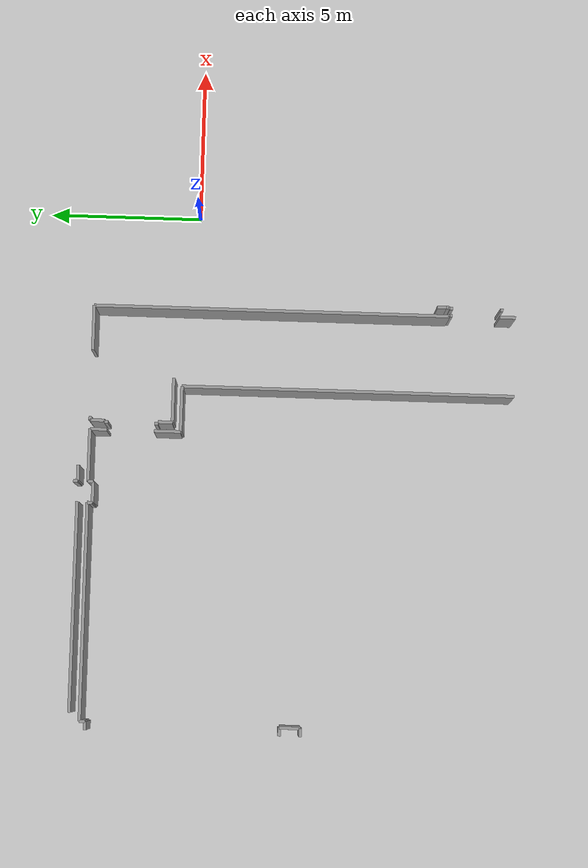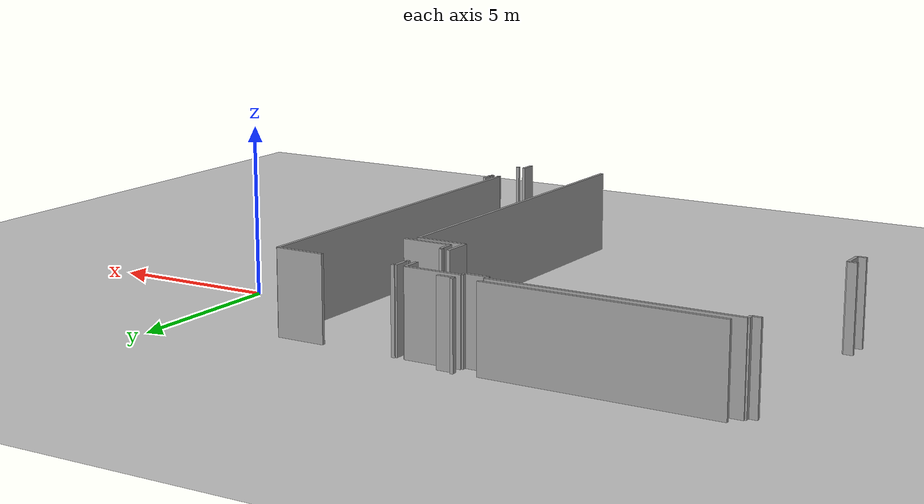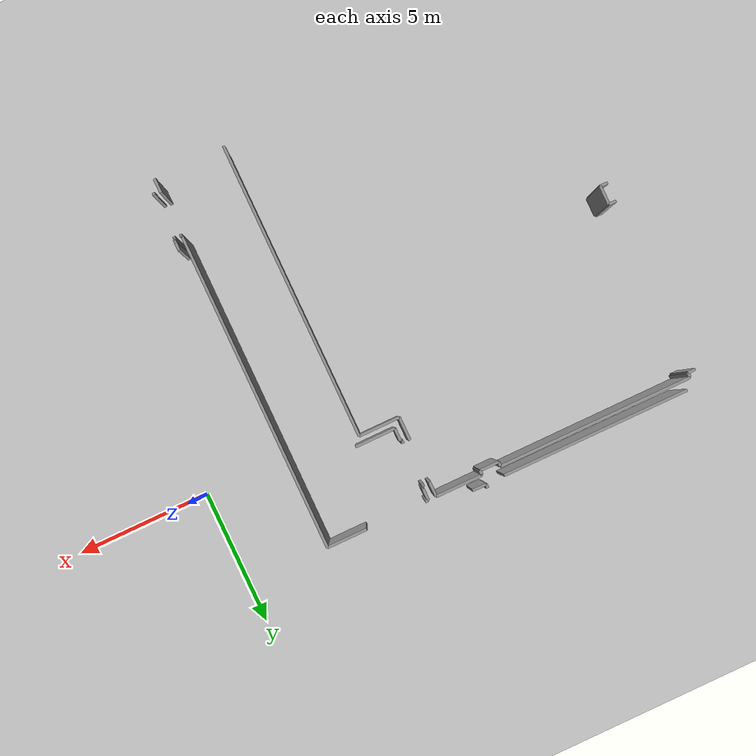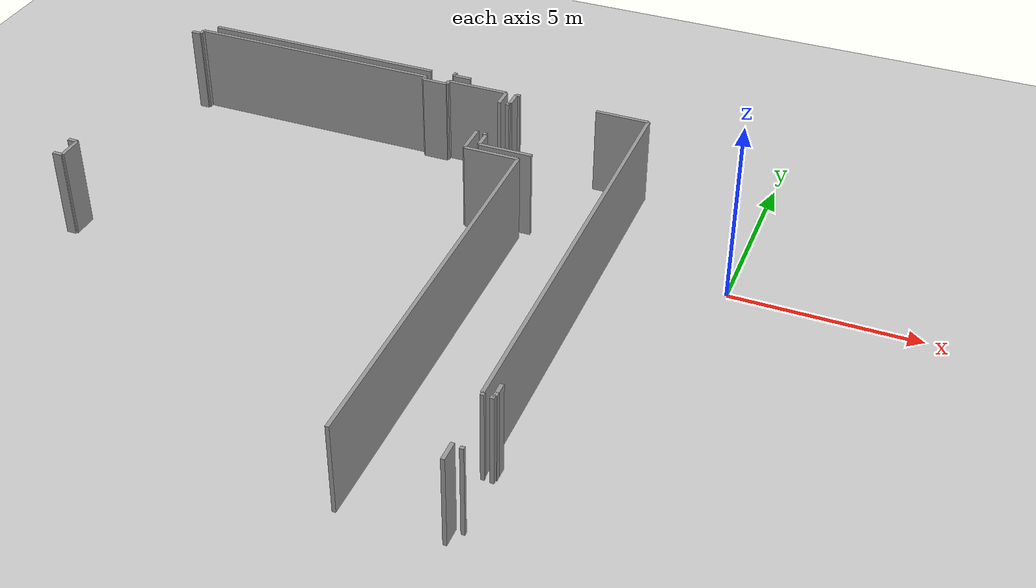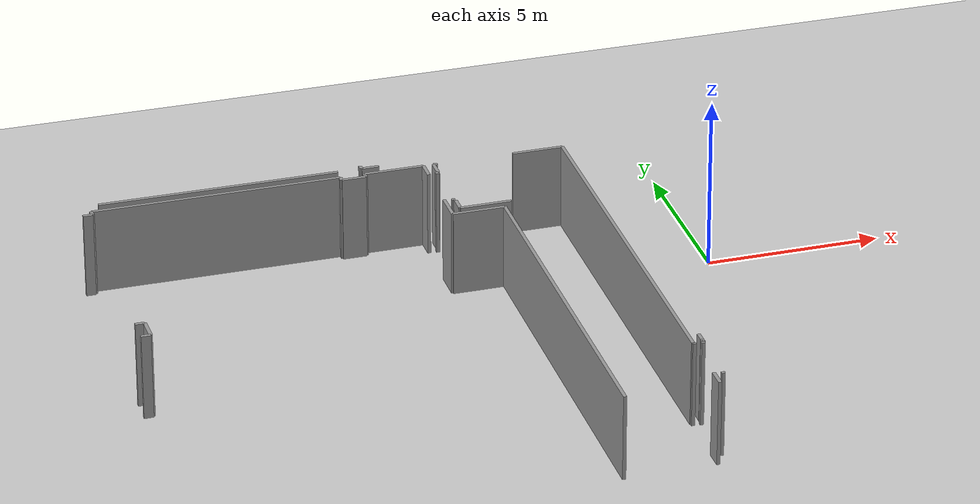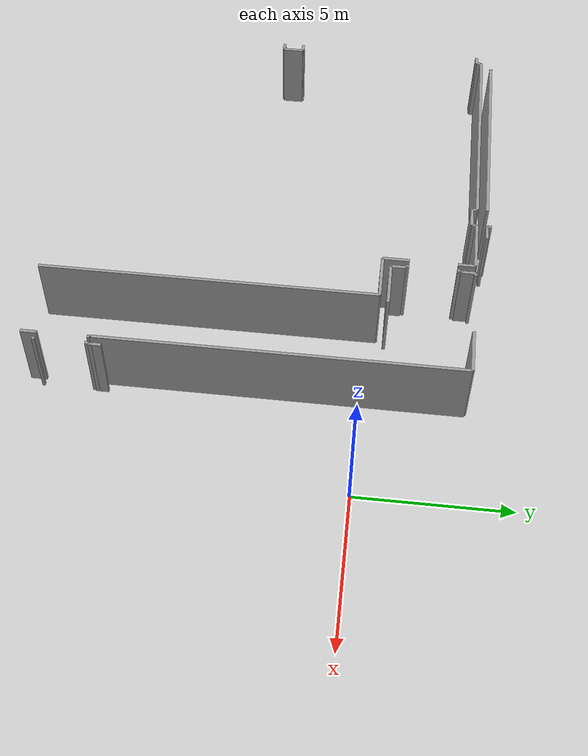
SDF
<sdf version="1.6">
 <world name="default">
  <model name="ground_plane">
   <static>1</static>
   <link name="link">
    <collision name="collision">
     <geometry><plane><normal>0 0 1</normal><size>100 100</size></plane></geometry>
     <surface><friction><ode><mu>100</mu><mu2>50</mu2></ode></friction></surface>
    </collision>
    <visual name="visual">
     <cast_shadows>0</cast_shadows>
     <geometry><plane><normal>0 0 1</normal><size>100 100</size></plane></geometry>
     <material>
      <script><uri>file://media/materials/scripts/gazebo.material</uri><name>Gazebo/Grey</name></script>
     </material>
    </visual>
   </link>
  </model>
  <model name="50055648">
   <static>1</static>
   <link name="Wall_11">
    <collision name="Wall_11_Collision">
     <geometry><box><size>6.85002592081 0.1 2.5</size></box></geometry>
     <pose>3.4250129604 0 1.25 0 0 0</pose>
    </collision>
    <visual name="Wall_11_Visual">
     <pose>3.4250129604 0 1.25 0 0 0</pose>
     <geometry><box><size>6.85002592081 0.1 2.5</size></box></geometry>
     <material>
      <script><uri>file://media/materials/scripts/gazebo.material</uri><name>Gazebo/Grey</name></script>
      <ambient>1 1 1 1</ambient>
     </material>
    </visual>
    <pose>7.40717216499 -20.3761385145 0 0 0 3.13977528299</pose>
   </link>
   <link name="Wall_18">
    <collision name="Wall_18_Collision">
     <geometry><box><size>0.508631750105 0.1 2.5</size></box></geometry>
     <pose>0.254315875052 0 1.25 0 0 0</pose>
    </collision>
    <visual name="Wall_18_Visual">
     <pose>0.254315875052 0 1.25 0 0 0</pose>
     <geometry><box><size>0.508631750105 0.1 2.5</size></box></geometry>
     <material>
      <script><uri>file://media/materials/scripts/gazebo.material</uri><name>Gazebo/Grey</name></script>
      <ambient>1 1 1 1</ambient>
     </material>
    </visual>
    <pose>8.59973831633 -20.3677544747 0 0 0 3.14159265359</pose>
   </link>
   <link name="Wall_19">
    <collision name="Wall_19_Collision">
     <geometry><box><size>0.144434140826 0.1 2.5</size></box></geometry>
     <pose>0.0722170704132 0 1.25 0 0 0</pose>
    </collision>
    <visual name="Wall_19_Visual">
     <pose>0.0722170704132 0 1.25 0 0 0</pose>
     <geometry><box><size>0.144434140826 0.1 2.5</size></box></geometry>
     <material>
      <script><uri>file://media/materials/scripts/gazebo.material</uri><name>Gazebo/Grey</name></script>
      <ambient>1 1 1 1</ambient>
     </material>
    </visual>
    <pose>8.09110656623 -20.3677544747 0 0 0 1.57079632679</pose>
   </link>
   <link name="Wall_41">
    <collision name="Wall_41_Collision">
     <geometry><box><size>0.270829892913 0.1 2.5</size></box></geometry>
     <pose>0.135414946456 0 1.25 0 0 0</pose>
    </collision>
    <visual name="Wall_41_Visual">
     <pose>0.135414946456 0 1.25 0 0 0</pose>
     <geometry><box><size>0.270829892913 0.1 2.5</size></box></geometry>
     <material>
      <script><uri>file://media/materials/scripts/gazebo.material</uri><name>Gazebo/Grey</name></script>
      <ambient>1 1 1 1</ambient>
     </material>
    </visual>
    <pose>0.00482717445155 -27.8817596321 0 0 0 0.0</pose>
   </link>
   <link name="Wall_42">
    <collision name="Wall_42_Collision">
     <geometry><box><size>0.681393783107 0.1 2.5</size></box></geometry>
     <pose>0.340696891554 0 1.25 0 0 0</pose>
    </collision>
    <visual name="Wall_42_Visual">
     <pose>0.340696891554 0 1.25 0 0 0</pose>
     <geometry><box><size>0.681393783107 0.1 2.5</size></box></geometry>
     <material>
      <script><uri>file://media/materials/scripts/gazebo.material</uri><name>Gazebo/Grey</name></script>
      <ambient>1 1 1 1</ambient>
     </material>
    </visual>
    <pose>0.275657067364 -27.8817596321 0 0 0 1.57079632679</pose>
   </link>
   <link name="Wall_43">
    <collision name="Wall_43_Collision">
     <geometry><box><size>0.270067707473 0.1 2.5</size></box></geometry>
     <pose>0.135033853737 0 1.25 0 0 0</pose>
    </collision>
    <visual name="Wall_43_Visual">
     <pose>0.135033853737 0 1.25 0 0 0</pose>
     <geometry><box><size>0.270067707473 0.1 2.5</size></box></geometry>
     <material>
      <script><uri>file://media/materials/scripts/gazebo.material</uri><name>Gazebo/Grey</name></script>
      <ambient>1 1 1 1</ambient>
     </material>
    </visual>
    <pose>0.275657067364 -27.200365849 0 0 0 3.14159265359</pose>
   </link>
   <link name="Wall_44">
    <collision name="Wall_44_Collision">
     <geometry><box><size>0.275403005551 0.1 2.5</size></box></geometry>
     <pose>0.137701502776 0 1.25 0 0 0</pose>
    </collision>
    <visual name="Wall_44_Visual">
     <pose>0.137701502776 0 1.25 0 0 0</pose>
     <geometry><box><size>0.275403005551 0.1 2.5</size></box></geometry>
     <material>
      <script><uri>file://media/materials/scripts/gazebo.material</uri><name>Gazebo/Grey</name></script>
      <ambient>1 1 1 1</ambient>
     </material>
    </visual>
    <pose>0.00558935989126 -20.8862946355 0 0 0 0.0</pose>
   </link>
   <link name="Wall_45">
    <collision name="Wall_45_Collision">
     <geometry><box><size>0.177589207454 0.1 2.5</size></box></geometry>
     <pose>0.0887946037271 0 1.25 0 0 0</pose>
    </collision>
    <visual name="Wall_45_Visual">
     <pose>0.0887946037271 0 1.25 0 0 0</pose>
     <geometry><box><size>0.177589207454 0.1 2.5</size></box></geometry>
     <material>
      <script><uri>file://media/materials/scripts/gazebo.material</uri><name>Gazebo/Grey</name></script>
      <ambient>1 1 1 1</ambient>
     </material>
    </visual>
    <pose>0.280992365443 -20.8862946355 0 0 0 1.57079632679</pose>
   </link>
   <link name="Wall_46">
    <collision name="Wall_46_Collision">
     <geometry><box><size>7.10674407083 0.1 2.5</size></box></geometry>
     <pose>3.55337203542 0 1.25 0 0 0</pose>
    </collision>
    <visual name="Wall_46_Visual">
     <pose>3.55337203542 0 1.25 0 0 0</pose>
     <geometry><box><size>7.10674407083 0.1 2.5</size></box></geometry>
     <material>
      <script><uri>file://media/materials/scripts/gazebo.material</uri><name>Gazebo/Grey</name></script>
      <ambient>1 1 1 1</ambient>
     </material>
    </visual>
    <pose>0.280992365443 -20.708705428 0 0 0 0.0</pose>
   </link>
   <link name="Wall_47">
    <collision name="Wall_47_Collision">
     <geometry><box><size>0.164632054979 0.1 2.5</size></box></geometry>
     <pose>0.0823160274895 0 1.25 0 0 0</pose>
    </collision>
    <visual name="Wall_47_Visual">
     <pose>0.0823160274895 0 1.25 0 0 0</pose>
     <geometry><box><size>0.164632054979 0.1 2.5</size></box></geometry>
     <material>
      <script><uri>file://media/materials/scripts/gazebo.material</uri><name>Gazebo/Grey</name></script>
      <ambient>1 1 1 1</ambient>
     </material>
    </visual>
    <pose>7.38773643627 -20.708705428 0 0 0 -1.57079632679</pose>
   </link>
   <link name="Wall_48">
    <collision name="Wall_48_Collision">
     <geometry><box><size>0.693969842863 0.1 2.5</size></box></geometry>
     <pose>0.346984921431 0 1.25 0 0 0</pose>
    </collision>
    <visual name="Wall_48_Visual">
     <pose>0.346984921431 0 1.25 0 0 0</pose>
     <geometry><box><size>0.693969842863 0.1 2.5</size></box></geometry>
     <material>
      <script><uri>file://media/materials/scripts/gazebo.material</uri><name>Gazebo/Grey</name></script>
      <ambient>1 1 1 1</ambient>
     </material>
    </visual>
    <pose>7.38773643627 -20.873337483 0 0 0 0.0</pose>
   </link>
   <link name="Wall_49">
    <collision name="Wall_49_Collision">
     <geometry><box><size>0.166537518578 0.1 2.5</size></box></geometry>
     <pose>0.0832687592891 0 1.25 0 0 0</pose>
    </collision>
    <visual name="Wall_49_Visual">
     <pose>0.0832687592891 0 1.25 0 0 0</pose>
     <geometry><box><size>0.166537518578 0.1 2.5</size></box></geometry>
     <material>
      <script><uri>file://media/materials/scripts/gazebo.material</uri><name>Gazebo/Grey</name></script>
      <ambient>1 1 1 1</ambient>
     </material>
    </visual>
    <pose>8.08170627914 -20.873337483 0 0 0 1.57079632679</pose>
   </link>
   <link name="Wall_50">
    <collision name="Wall_50_Collision">
     <geometry><box><size>1.71580645571 0.1 2.5</size></box></geometry>
     <pose>0.857903227855 0 1.25 0 0 0</pose>
    </collision>
    <visual name="Wall_50_Visual">
     <pose>0.857903227855 0 1.25 0 0 0</pose>
     <geometry><box><size>1.71580645571 0.1 2.5</size></box></geometry>
     <material>
      <script><uri>file://media/materials/scripts/gazebo.material</uri><name>Gazebo/Grey</name></script>
      <ambient>1 1 1 1</ambient>
     </material>
    </visual>
    <pose>8.08170627914 -20.7067999644 0 0 0 0.0</pose>
   </link>
   <link name="Wall_51">
    <collision name="Wall_51_Collision">
     <geometry><box><size>0.556395370994 0.1 2.5</size></box></geometry>
     <pose>0.278197685497 0 1.25 0 0 0</pose>
    </collision>
    <visual name="Wall_51_Visual">
     <pose>0.278197685497 0 1.25 0 0 0</pose>
     <geometry><box><size>0.556395370994 0.1 2.5</size></box></geometry>
     <material>
      <script><uri>file://media/materials/scripts/gazebo.material</uri><name>Gazebo/Grey</name></script>
      <ambient>1 1 1 1</ambient>
     </material>
    </visual>
    <pose>9.79751273485 -20.7067999644 0 0 0 -1.57079632679</pose>
   </link>
   <link name="Wall_52">
    <collision name="Wall_52_Collision">
     <geometry><box><size>0.860380330534 0.1 2.5</size></box></geometry>
     <pose>0.430190165267 0 1.25 0 0 0</pose>
    </collision>
    <visual name="Wall_52_Visual">
     <pose>0.430190165267 0 1.25 0 0 0</pose>
     <geometry><box><size>0.860380330534 0.1 2.5</size></box></geometry>
     <material>
      <script><uri>file://media/materials/scripts/gazebo.material</uri><name>Gazebo/Grey</name></script>
      <ambient>1 1 1 1</ambient>
     </material>
    </visual>
    <pose>9.79751273485 -22.8106858399 0 0 0 -1.57079632679</pose>
   </link>
   <link name="Wall_53">
    <collision name="Wall_53_Collision">
     <geometry><box><size>1.49642407998 0.1 2.5</size></box></geometry>
     <pose>0.748212039989 0 1.25 0 0 0</pose>
    </collision>
    <visual name="Wall_53_Visual">
     <pose>0.748212039989 0 1.25 0 0 0</pose>
     <geometry><box><size>1.49642407998 0.1 2.5</size></box></geometry>
     <material>
      <script><uri>file://media/materials/scripts/gazebo.material</uri><name>Gazebo/Grey</name></script>
      <ambient>1 1 1 1</ambient>
     </material>
    </visual>
    <pose>9.79751273485 -23.6710661704 0 0 0 0.0</pose>
   </link>
   <link name="Wall_54">
    <collision name="Wall_54_Collision">
     <geometry><box><size>10.8827377701 0.1 2.5</size></box></geometry>
     <pose>5.44136888505 0 1.25 0 0 0</pose>
    </collision>
    <visual name="Wall_54_Visual">
     <pose>5.44136888505 0 1.25 0 0 0</pose>
     <geometry><box><size>10.8827377701 0.1 2.5</size></box></geometry>
     <material>
      <script><uri>file://media/materials/scripts/gazebo.material</uri><name>Gazebo/Grey</name></script>
      <ambient>1 1 1 1</ambient>
     </material>
    </visual>
    <pose>11.2939368148 -23.6710661704 0 0 0 -1.57079632679</pose>
   </link>
   <link name="Wall_62">
    <collision name="Wall_62_Collision">
     <geometry><box><size>1.46593666239 0.1 2.5</size></box></geometry>
     <pose>0.732968331195 0 1.25 0 0 0</pose>
    </collision>
    <visual name="Wall_62_Visual">
     <pose>0.732968331195 0 1.25 0 0 0</pose>
     <geometry><box><size>1.46593666239 0.1 2.5</size></box></geometry>
     <material>
      <script><uri>file://media/materials/scripts/gazebo.material</uri><name>Gazebo/Grey</name></script>
      <ambient>1 1 1 1</ambient>
     </material>
    </visual>
    <pose>11.5608287496 -23.3922333304 0 0 0 3.14159265359</pose>
   </link>
   <link name="Wall_63">
    <collision name="Wall_63_Collision">
     <geometry><box><size>0.469506230866 0.1 2.5</size></box></geometry>
     <pose>0.234753115433 0 1.25 0 0 0</pose>
    </collision>
    <visual name="Wall_63_Visual">
     <pose>0.234753115433 0 1.25 0 0 0</pose>
     <geometry><box><size>0.469506230866 0.1 2.5</size></box></geometry>
     <material>
      <script><uri>file://media/materials/scripts/gazebo.material</uri><name>Gazebo/Grey</name></script>
      <ambient>1 1 1 1</ambient>
     </material>
    </visual>
    <pose>10.0948920872 -23.3922333304 0 0 0 1.57079632679</pose>
   </link>
   <link name="Wall_64">
    <collision name="Wall_64_Collision">
     <geometry><box><size>0.0470014354492 0.1 2.5</size></box></geometry>
     <pose>0.0235007177246 0 1.25 0 0 0</pose>
    </collision>
    <visual name="Wall_64_Visual">
     <pose>0.0235007177246 0 1.25 0 0 0</pose>
     <geometry><box><size>0.0470014354492 0.1 2.5</size></box></geometry>
     <material>
      <script><uri>file://media/materials/scripts/gazebo.material</uri><name>Gazebo/Grey</name></script>
      <ambient>1 1 1 1</ambient>
     </material>
    </visual>
    <pose>10.0948920872 -22.9227270995 0 0 0 3.14159265359</pose>
   </link>
   <link name="Wall_65">
    <collision name="Wall_65_Collision">
     <geometry><box><size>0.108357363347 0.1 2.5</size></box></geometry>
     <pose>0.0541786816733 0 1.25 0 0 0</pose>
    </collision>
    <visual name="Wall_65_Visual">
     <pose>0.0541786816733 0 1.25 0 0 0</pose>
     <geometry><box><size>0.108357363347 0.1 2.5</size></box></geometry>
     <material>
      <script><uri>file://media/materials/scripts/gazebo.material</uri><name>Gazebo/Grey</name></script>
      <ambient>1 1 1 1</ambient>
     </material>
    </visual>
    <pose>10.0478906518 -22.9227270995 0 0 0 1.57079632679</pose>
   </link>
   <link name="Wall_66">
    <collision name="Wall_66_Collision">
     <geometry><box><size>0.109119548786 0.1 2.5</size></box></geometry>
     <pose>0.0545597743931 0 1.25 0 0 0</pose>
    </collision>
    <visual name="Wall_66_Visual">
     <pose>0.0545597743931 0 1.25 0 0 0</pose>
     <geometry><box><size>0.109119548786 0.1 2.5</size></box></geometry>
     <material>
      <script><uri>file://media/materials/scripts/gazebo.material</uri><name>Gazebo/Grey</name></script>
      <ambient>1 1 1 1</ambient>
     </material>
    </visual>
    <pose>10.0478906518 -21.2875852695 0 0 0 1.57079632679</pose>
   </link>
   <link name="Wall_67">
    <collision name="Wall_67_Collision">
     <geometry><box><size>0.0435716009705 0.1 2.5</size></box></geometry>
     <pose>0.0217858004853 0 1.25 0 0 0</pose>
    </collision>
    <visual name="Wall_67_Visual">
     <pose>0.0217858004853 0 1.25 0 0 0</pose>
     <geometry><box><size>0.0435716009705 0.1 2.5</size></box></geometry>
     <material>
      <script><uri>file://media/materials/scripts/gazebo.material</uri><name>Gazebo/Grey</name></script>
      <ambient>1 1 1 1</ambient>
     </material>
    </visual>
    <pose>10.0478906518 -21.1784657207 0 0 0 0.0</pose>
   </link>
   <link name="Wall_68">
    <collision name="Wall_68_Collision">
     <geometry><box><size>0.475095590757 0.1 2.5</size></box></geometry>
     <pose>0.237547795379 0 1.25 0 0 0</pose>
    </collision>
    <visual name="Wall_68_Visual">
     <pose>0.237547795379 0 1.25 0 0 0</pose>
     <geometry><box><size>0.475095590757 0.1 2.5</size></box></geometry>
     <material>
      <script><uri>file://media/materials/scripts/gazebo.material</uri><name>Gazebo/Grey</name></script>
      <ambient>1 1 1 1</ambient>
     </material>
    </visual>
    <pose>10.0914622528 -21.1784657207 0 0 0 1.57079632679</pose>
   </link>
   <link name="Wall_69">
    <collision name="Wall_69_Collision">
     <geometry><box><size>0.117376557716 0.1 2.5</size></box></geometry>
     <pose>0.0586882788582 0 1.25 0 0 0</pose>
    </collision>
    <visual name="Wall_69_Visual">
     <pose>0.0586882788582 0 1.25 0 0 0</pose>
     <geometry><box><size>0.117376557716 0.1 2.5</size></box></geometry>
     <material>
      <script><uri>file://media/materials/scripts/gazebo.material</uri><name>Gazebo/Grey</name></script>
      <ambient>1 1 1 1</ambient>
     </material>
    </visual>
    <pose>10.0914622528 -20.70337013 0 0 0 0.0</pose>
   </link>
   <link name="Wall_70">
    <collision name="Wall_70_Collision">
     <geometry><box><size>1.46568260058 0.1 2.5</size></box></geometry>
     <pose>0.732841300288 0 1.25 0 0 0</pose>
    </collision>
    <visual name="Wall_70_Visual">
     <pose>0.732841300288 0 1.25 0 0 0</pose>
     <geometry><box><size>1.46568260058 0.1 2.5</size></box></geometry>
     <material>
      <script><uri>file://media/materials/scripts/gazebo.material</uri><name>Gazebo/Grey</name></script>
      <ambient>1 1 1 1</ambient>
     </material>
    </visual>
    <pose>12.4040599078 -20.70337013 0 0 0 0.0</pose>
   </link>
   <link name="Wall_71">
    <collision name="Wall_71_Collision">
     <geometry><box><size>11.6686779894 0.1 2.5</size></box></geometry>
     <pose>5.83433899468 0 1.25 0 0 0</pose>
    </collision>
    <visual name="Wall_71_Visual">
     <pose>5.83433899468 0 1.25 0 0 0</pose>
     <geometry><box><size>11.6686779894 0.1 2.5</size></box></geometry>
     <material>
      <script><uri>file://media/materials/scripts/gazebo.material</uri><name>Gazebo/Grey</name></script>
      <ambient>1 1 1 1</ambient>
     </material>
    </visual>
    <pose>13.8697425084 -20.70337013 0 0 0 -1.57079632679</pose>
   </link>
   <link name="Wall_72">
    <collision name="Wall_72_Collision">
     <geometry><box><size>0.0209600995922 0.1 2.5</size></box></geometry>
     <pose>0.0104800497961 0 1.25 0 0 0</pose>
    </collision>
    <visual name="Wall_72_Visual">
     <pose>0.0104800497961 0 1.25 0 0 0</pose>
     <geometry><box><size>0.0209600995922 0.1 2.5</size></box></geometry>
     <material>
      <script><uri>file://media/materials/scripts/gazebo.material</uri><name>Gazebo/Grey</name></script>
      <ambient>1 1 1 1</ambient>
     </material>
    </visual>
    <pose>13.8697425084 -32.3720481193 0 0 0 0.0</pose>
   </link>
   <link name="Wall_73">
    <collision name="Wall_73_Collision">
     <geometry><box><size>0.0847296147153 0.1 2.5</size></box></geometry>
     <pose>0.0423648073576 0 1.25 0 0 0</pose>
    </collision>
    <visual name="Wall_73_Visual">
     <pose>0.0423648073576 0 1.25 0 0 0</pose>
     <geometry><box><size>0.0847296147153 0.1 2.5</size></box></geometry>
     <material>
      <script><uri>file://media/materials/scripts/gazebo.material</uri><name>Gazebo/Grey</name></script>
      <ambient>1 1 1 1</ambient>
     </material>
    </visual>
    <pose>13.8907026079 -32.3720481193 0 0 0 -1.57079632679</pose>
   </link>
   <link name="Wall_74">
    <collision name="Wall_74_Collision">
     <geometry><box><size>0.525018737059 0.1 2.5</size></box></geometry>
     <pose>0.262509368529 0 1.25 0 0 0</pose>
    </collision>
    <visual name="Wall_74_Visual">
     <pose>0.262509368529 0 1.25 0 0 0</pose>
     <geometry><box><size>0.525018737059 0.1 2.5</size></box></geometry>
     <material>
      <script><uri>file://media/materials/scripts/gazebo.material</uri><name>Gazebo/Grey</name></script>
      <ambient>1 1 1 1</ambient>
     </material>
    </visual>
    <pose>13.8907026079 -34.0177335146 0 0 0 -1.57079632679</pose>
   </link>
   <link name="Wall_81">
    <collision name="Wall_81_Collision">
     <geometry><box><size>0.288868281653 0.1 2.5</size></box></geometry>
     <pose>0.144434140826 0 1.25 0 0 0</pose>
    </collision>
    <visual name="Wall_81_Visual">
     <pose>0.144434140826 0 1.25 0 0 0</pose>
     <geometry><box><size>0.288868281653 0.1 2.5</size></box></geometry>
     <material>
      <script><uri>file://media/materials/scripts/gazebo.material</uri><name>Gazebo/Grey</name></script>
      <ambient>1 1 1 1</ambient>
     </material>
    </visual>
    <pose>14.1575945428 -32.2558148398 0 0 0 1.57079632679</pose>
   </link>
   <link name="Wall_90">
    <collision name="Wall_90_Collision">
     <geometry><box><size>0.0901919436999 0.1 2.5</size></box></geometry>
     <pose>0.0450959718499 0 1.25 0 0 0</pose>
    </collision>
    <visual name="Wall_90_Visual">
     <pose>0.0450959718499 0 1.25 0 0 0</pose>
     <geometry><box><size>0.0901919436999 0.1 2.5</size></box></geometry>
     <material>
      <script><uri>file://media/materials/scripts/gazebo.material</uri><name>Gazebo/Grey</name></script>
      <ambient>1 1 1 1</ambient>
     </material>
    </visual>
    <pose>14.1297747742 -34.1262179088 0 0 0 1.57079632679</pose>
   </link>
   <link name="Wall_91">
    <collision name="Wall_91_Collision">
     <geometry><box><size>0.104419405241 0.1 2.5</size></box></geometry>
     <pose>0.0522097026206 0 1.25 0 0 0</pose>
    </collision>
    <visual name="Wall_91_Visual">
     <pose>0.0522097026206 0 1.25 0 0 0</pose>
     <geometry><box><size>0.104419405241 0.1 2.5</size></box></geometry>
     <material>
      <script><uri>file://media/materials/scripts/gazebo.material</uri><name>Gazebo/Grey</name></script>
      <ambient>1 1 1 1</ambient>
     </material>
    </visual>
    <pose>14.1297747742 -32.4768486173 0 0 0 1.57079632679</pose>
   </link>
   <link name="Wall_92">
    <collision name="Wall_92_Collision">
     <geometry><box><size>0.0275657067364 0.1 2.5</size></box></geometry>
     <pose>0.0137828533682 0 1.25 0 0 0</pose>
    </collision>
    <visual name="Wall_92_Visual">
     <pose>0.0137828533682 0 1.25 0 0 0</pose>
     <geometry><box><size>0.0275657067364 0.1 2.5</size></box></geometry>
     <material>
      <script><uri>file://media/materials/scripts/gazebo.material</uri><name>Gazebo/Grey</name></script>
      <ambient>1 1 1 1</ambient>
     </material>
    </visual>
    <pose>14.1297747742 -32.372429212 0 0 0 0.0</pose>
   </link>
   <link name="Wall_93">
    <collision name="Wall_93_Collision">
     <geometry><box><size>0.116614649032 0.1 2.5</size></box></geometry>
     <pose>0.0583073245161 0 1.25 0 0 0</pose>
    </collision>
    <visual name="Wall_93_Visual">
     <pose>0.0583073245161 0 1.25 0 0 0</pose>
     <geometry><box><size>0.116614649032 0.1 2.5</size></box></geometry>
     <material>
      <script><uri>file://media/materials/scripts/gazebo.material</uri><name>Gazebo/Grey</name></script>
      <ambient>1 1 1 1</ambient>
     </material>
    </visual>
    <pose>14.1573404809 -32.372429212 0 0 0 1.568617681</pose>
   </link>
   <pose>-17.15 24.0530474714 0 0 0 0</pose>
  </model>
 </world>
</sdf>
